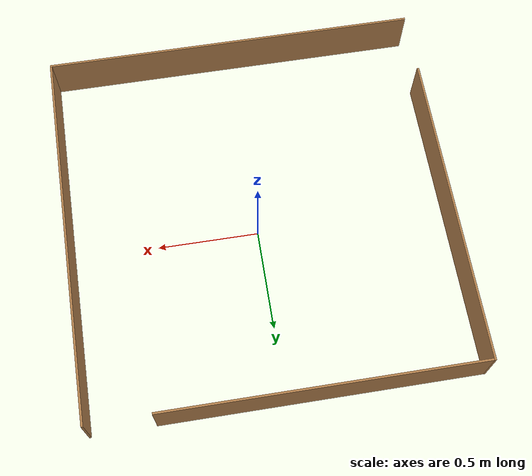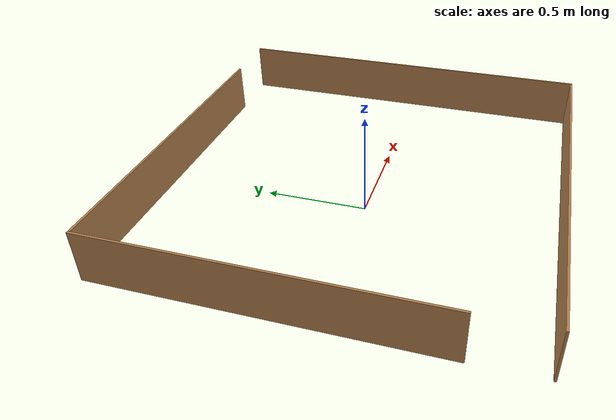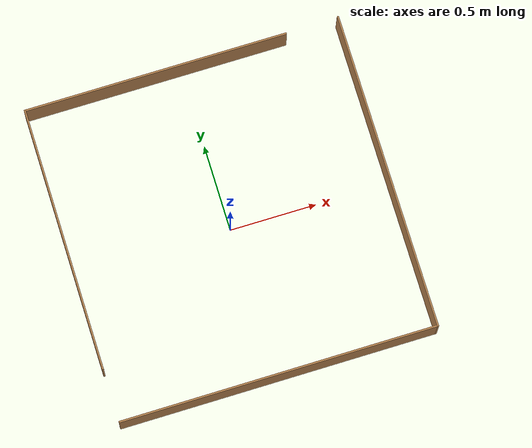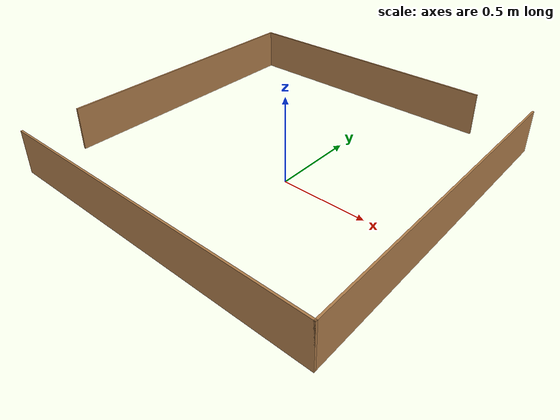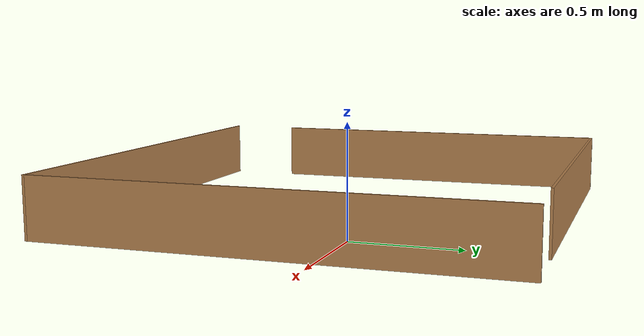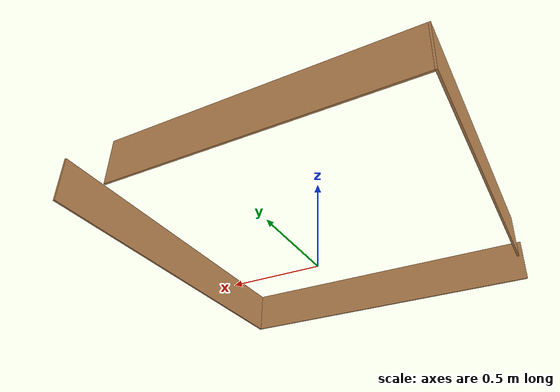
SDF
<?xml version='1.0'?>
<sdf version='1.6'>
  <model name='turtlebot3_square'>
    <pose frame=''>0 0 0 0 -0 0</pose>
    <link name='Wall_0'>
      <collision name='Wall_0_Collision'>
        <geometry>
          <box>
            <size>1.820 0.010 0.240</size>
          </box>
        </geometry>
        <pose frame=''>0 0 0.25 0 -0 0</pose>
      </collision>
      <visual name='Wall_0_Visual'>
        <pose frame=''>0 0 0.25 0 -0 0</pose>
        <geometry>
          <box>
            <size>1.820 0.010 0.240</size>
          </box>
        </geometry>
        <material>
          <script>
            <uri>file://media/materials/scripts/gazebo.material</uri>
            <name>Gazebo/Wood</name>
          </script>
          <ambient>1 1 1 1</ambient>
        </material>
      </visual>
      <pose frame=''>0.900 0 0 0 -0 -1.5708</pose>
    </link>
    <link name='Wall_2'>
      <collision name='Wall_2_Collision'>
        <geometry>
          <box>
            <size>1.500 0.010 0.240</size>
          </box>
        </geometry>
        <pose frame=''>0 0 0.25 0 -0 0</pose>
      </collision>
      <visual name='Wall_2_Visual'>
        <pose frame=''>0 0 0.25 0 -0 0</pose>
        <geometry>
          <box>
            <size>1.500 0.010 0.240</size>
          </box>
        </geometry>
        <material>
          <script>
            <uri>file://media/materials/scripts/gazebo.material</uri>
            <name>Gazebo/Wood</name>
          </script>
          <ambient>1 1 1 1</ambient>
        </material>
      </visual>
      <pose frame=''>-0.150 0.900 0 0 0 0</pose>
    </link>
    <link name='Wall_3'>
      <collision name='Wall_3_Collision'>
        <geometry>
          <box>
            <size>1.510 0.010 0.240</size>
          </box>
        </geometry>
        <pose frame=''>0 0 0.25 0 -0 0</pose>
      </collision>
      <visual name='Wall_3_Visual'>
        <pose frame=''>0 0 0.25 0 -0 0</pose>
        <geometry>
          <box>
            <size>1.510 0.010 0.240</size>
          </box>
        </geometry>
        <material>
          <script>
            <uri>file://media/materials/scripts/gazebo.material</uri>
            <name>Gazebo/Wood</name>
          </script>
          <ambient>1 1 1 1</ambient>
        </material>
      </visual>
      <pose frame=''>-0.905 0.150 0 0 -0 1.5708</pose>
    </link>
    <link name='Wall_4'>
      <collision name='Wall_4_Collision'>
        <geometry>
          <box>
            <size>1.810 0.010 0.240</size>
          </box>
        </geometry>
        <pose frame=''>0 0 0.25 0 -0 0</pose>
      </collision>
      <visual name='Wall_4_Visual'>
        <pose frame=''>0 0 0.25 0 -0 0</pose>
        <geometry>
          <box>
            <size>1.810 0.010 0.240</size>
          </box>
        </geometry>
        <material>
          <script>
            <uri>file://media/materials/scripts/gazebo.material</uri>
            <name>Gazebo/Wood</name>
          </script>
          <ambient>1 1 1 1</ambient>
        </material>
      </visual>
      <pose frame=''>0 -0.905 0 0 -0 0</pose>
    </link>
    <static>1</static>
  </model>
</sdf>
